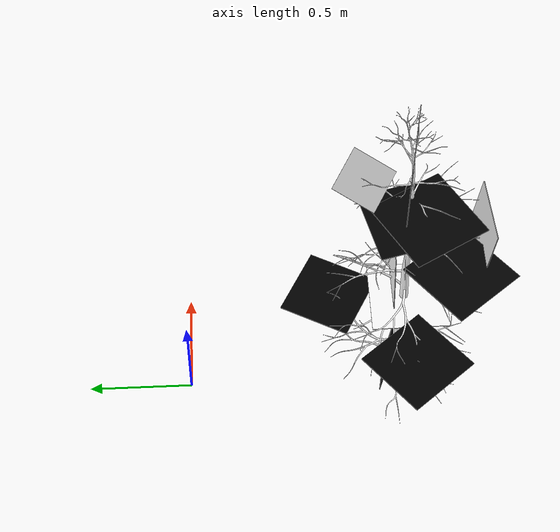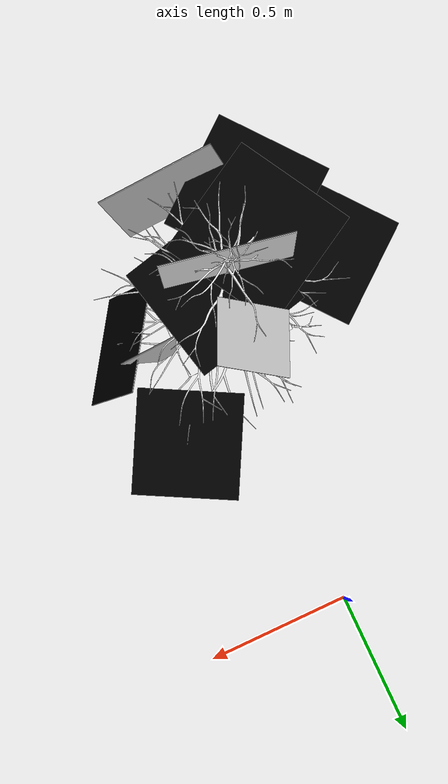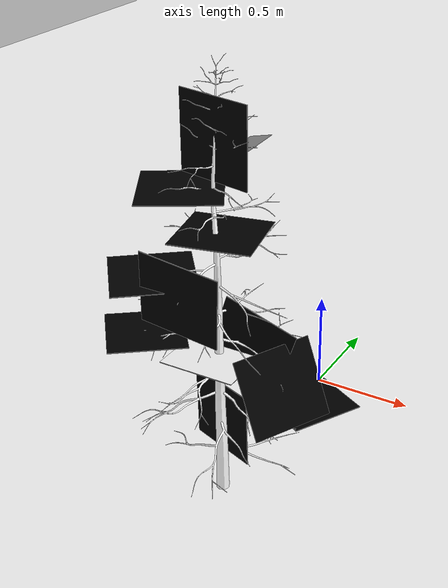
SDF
<?xml version="1.0"?>
<sdf version="1.7">
    <world name="apple_tree_3_marked">

        <plugin filename="gz-sim-physics-system" name="gz::sim::systems::Physics"/>
        <plugin filename="gz-sim-user-commands-system" name="gz::sim::systems::UserCommands"/>
        <plugin filename="gz-sim-scene-broadcaster-system" name="gz::sim::systems::SceneBroadcaster"/>
        <plugin filename="gz-sim-contact-system" name="gz::sim::systems::Contact"/>
        <plugin filename="gz-sim-sensors-system" name="gz::sim::systems::Sensors">
            <render_engine>ogre2</render_engine>
        </plugin>

        <physics type="ode">
            <max_step_size>0.01</max_step_size>
            <real_time_factor>1</real_time_factor>
            <max_contacts>10</max_contacts>
            <real_time_update_rate>1000</real_time_update_rate>
        </physics>

        <gravity>0 0 -9.8</gravity>

        <scene>
            <ambient>0.5 0.5 0.5 1</ambient>
            <background>0.3 0.7 0.9 1</background>
            <grid>false</grid>
            <sky>
                <clouds>
                    <speed>12</speed>
                </clouds>
            </sky>
            <shadows>true</shadows>
        </scene>

        <light name='sun' type='directional'>
            <pose>0 0 10 0 -0 0</pose>
            <cast_shadows>true</cast_shadows>
            <intensity>1</intensity>
            <direction>-0.5 0.1 -0.9</direction>
            <diffuse>0.8 0.8 0.8 1</diffuse>
            <specular>0.2 0.2 0.2 1</specular>
            <attenuation>
                <range>1000</range>
                <linear>0.01</linear>
                <constant>0.90000000000000002</constant>
                <quadratic>0.001</quadratic>
            </attenuation>
            <spot>
                <inner_angle>0</inner_angle>
                <outer_angle>0</outer_angle>
                <falloff>0</falloff>
            </spot>
        </light>

        <!-- Apple tree with crook canker disease -->
        <include>
            <uri>model://apple_tree_3</uri>
            <name>apple_tree_3</name>
            <pose>0 -1.0 0 0 0 1.57</pose>
        </include>

        <!-- Marker 0 (Shepherd's Crook) -->
        <include>
            <uri>model://aruco_marker_0</uri>
            <name>aruco_marker_0</name>
            <pose>-0.009654 -0.778532 1.57872 0.811871 1.06036 0.309182</pose>
        </include>

        <include>
            <uri>model://aruco_marker_1</uri>
            <name>aruco_marker_1</name>
            <pose>-0.367082 -1.02781 0.742518 -1.59411 0.01861 0.673443</pose>
        </include>

        <include>
            <uri>model://aruco_marker_2</uri>
            <name>aruco_marker_2</name>
            <pose>-0.188503 -1.19846 1.15268 -1.57155 0.000598 0.669926</pose>
        </include>

        <include>
            <uri>model://aruco_marker_3</uri>
            <name>aruco_marker_3</name>
            <pose>0.006658 -1.30637 1.1344 0.895488 -1.3595 -0.884485</pose>
        </include>

        <include>
            <uri>model://aruco_marker_4</uri>
            <name>aruco_marker_4</name>
            <pose>0.319513 -1.03267 0.667826 -1.31646 1.13327 -0.356823</pose>
        </include>

        <include>
            <uri>model://aruco_marker_5</uri>
            <name>aruco_marker_5</name>
            <pose>0.262493 -0.684981 0.378171 -1.57655 0.010701 1.07706</pose>
        </include>

        <!-- Marker 1 (Canker) -->
        <include>
            <uri>model://aruco_marker_6</uri>
            <name>aruco_marker_6</name>
            <pose>-0.017538 -0.967017 0.373719 2.78862 -1.55428 3.14159</pose>
        </include>

        <include>
            <uri>model://aruco_marker_7</uri>
            <name>aruco_marker_7</name>
            <pose>0.121309 -0.949999 0.763307 0 0.312433 0</pose>
        </include>

        <include>
            <uri>model://aruco_marker_8</uri>
            <name>aruco_marker_8</name>
            <pose>-0.004027 -1.0199 0.730032 1.5497 -0 0</pose>
        </include>

        <include>
            <uri>model://aruco_marker_9</uri>
            <name>aruco_marker_9</name>
            <pose>0.00901 -0.982064 1.28864 -1.60391 0.007637 0.226589</pose>
        </include>

        <include>
            <uri>model://aruco_marker_10</uri>
            <name>aruco_marker_10</name>
            <pose>-0.142968 -1.03624 1.47459 -1.56665 -0.002368 0.518794</pose>
        </include>

        <include>
            <uri>model://aruco_marker_11</uri>
            <name>aruco_marker_11</name>
            <pose>-0.027246 -0.97032 1.67792 -1.00306 -1.56627 0.811597</pose>
        </include>
    </world>
</sdf>

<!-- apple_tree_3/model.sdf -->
<sdf version="1.7">
    <model name="apple_tree_3">
        <static>true</static>
        <link name="ground">
        <visual name="ground">
            <geometry>
            <mesh>
                <uri>model://apple_tree_3/meshes/ground.obj</uri>
            </mesh>
            </geometry>
            <material>
            <ambient>0.600 0.600 0.600 1</ambient>
            <diffuse>1.000 1.000 1.000 1</diffuse>
            <specular>0.1 0.1 0.1 1</specular>
            <emissive>0 0 0 1</emissive>
            <pbr>
                <metal>
                <albedo_map>model://apple_tree_3/materials/dirt.jpg</albedo_map>
                <roughness>0.7</roughness>
                <metalness>0.0</metalness>
                </metal>
            </pbr>
            </material>
        </visual>
        <collision name="collision">
            <geometry>
            <mesh>
                <uri>model://apple_tree_3/meshes/ground.obj</uri>
            </mesh>
            </geometry>
            <surface>
            <contact/>
            </surface>
            <laser_retro>0.0</laser_retro>
        </collision>
        </link>
        <link name="apple_tree_3_link">

            <visual name="apple_tree_3_visual">
                <geometry>
                <mesh>
                    <uri>model://apple_tree_3/meshes/apple_tree_3.obj</uri>
                </mesh>
                </geometry>

                <material>
                    <ambient>0.6 0.6 0.6 1</ambient>
                    <diffuse>1 1 1 1</diffuse>
                    <specular>0.1 0.1 0.1 1</specular>
                    <emissive>0 0 0 1</emissive>

                    <pbr>
                        <metal>
                        <!-- Base color -->
                        <albedo_map>model://apple_tree_3/materials/tree_basecolor_baked.png</albedo_map>

                        <!-- Normal map -->
                        <normal_map>model://apple_tree_3/materials/tree_normal_baked.png</normal_map>

                        <!-- Roughness map (preferred) -->
                        <roughness_map>model://apple_tree_3/materials/tree_roughness_baked.png</roughness_map>

                        <!-- For bark -->
                        <metalness>0.0</metalness>

                        <!-- Optional: if your roughness map is missing/ignored, fallback constant -->
                        </metal>
                    </pbr>
                </material>

            </visual>

            <collision name="apple_tree_3_collision">
                <geometry>
                    <mesh>
                        <uri>model://apple_tree_3/meshes/apple_tree_3.obj</uri>
                    </mesh>
                </geometry>
                <surface>
                <contact>
                    <collide_without_contact>true</collide_without_contact>
                    <collide_bitmask>0x00</collide_bitmask>
                </contact>
                </surface>
            </collision>

        </link>
    </model>
</sdf>

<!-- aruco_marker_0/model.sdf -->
<sdf version='1.6'>
  <model name='aruco_marker_0'>
    <link name='link_0'>
      <pose frame=''>0 0 0 0 -0 0</pose>
      <inertial>
        <mass>1</mass>
        <inertia>
          <ixx>0</ixx>
          <ixy>0</ixy>
          <ixz>0</ixz>
          <iyy>0</iyy>
          <iyz>0</iyz>
          <izz>0</izz>
        </inertia>
      </inertial>
      <visual name='visual'>
        <pose frame=''>0 0 0 0 -0 0</pose>
        <geometry>
          <mesh>
            <uri>file://isr-testbed/aruco_marker_0/aruco_marker_0.dae</uri>
            <scale>0.1 0.1 0.1</scale>
          </mesh>
        </geometry>
        <material>
          <lighting>1</lighting>
          <script>
            <uri>file://media/materials/scripts/gazebo.material</uri>
            <name>Gazebo/DepthMapVS</name>
          </script>
          <ambient>0.3 0.3 0.3 1</ambient>
          <diffuse>0.7 0.7 0.7 1</diffuse>
          <specular>0.01 0.01 0.01 1</specular>
          <emissive>0 0 0 1</emissive>
        </material>
        <transparency>0</transparency>
        <cast_shadows>1</cast_shadows>
      </visual>
      <collision name='collision'>
        <laser_retro>0</laser_retro>
        <max_contacts>10</max_contacts>
        <pose frame=''>0 0 0 0 -0 0</pose>
        <geometry>
          <mesh>
            <uri>file://isr-testbed/aruco_marker_0/aruco_marker_0.dae</uri>
            <scale>0.1 0.1 0.1</scale>
          </mesh>
        </geometry>
        <surface>
          <friction>
            <ode>
              <mu>1</mu>
              <mu2>1</mu2>
              <fdir1>0 0 0</fdir1>
              <slip1>0</slip1>
              <slip2>0</slip2>
            </ode>
            <torsional>
              <coefficient>1</coefficient>
              <patch_radius>0</patch_radius>
              <surface_radius>0</surface_radius>
              <use_patch_radius>1</use_patch_radius>
              <ode>
                <slip>0</slip>
              </ode>
            </torsional>
          </friction>
          <bounce>
            <restitution_coefficient>0</restitution_coefficient>
            <threshold>1e+06</threshold>
          </bounce>
          <contact>
            <collide_without_contact>0</collide_without_contact>
            <collide_without_contact_bitmask>1</collide_without_contact_bitmask>
            <collide_bitmask>1</collide_bitmask>
            <ode>
              <soft_cfm>0</soft_cfm>
              <soft_erp>0.2</soft_erp>
              <kp>1e+13</kp>
              <kd>1</kd>
              <max_vel>0.01</max_vel>
              <min_depth>0</min_depth>
            </ode>
            <bullet>
              <split_impulse>1</split_impulse>
              <split_impulse_penetration_threshold>-0.01</split_impulse_penetration_threshold>
              <soft_cfm>0</soft_cfm>
              <soft_erp>0.2</soft_erp>
              <kp>1e+13</kp>
              <kd>1</kd>
            </bullet>
          </contact>
        </surface>
      </collision>
    </link>
    <static>1</static>
    <allow_auto_disable>1</allow_auto_disable>
  </model>
</sdf>

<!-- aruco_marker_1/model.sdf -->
<sdf version="1.9">
  <model name="aruco_marker_1">
    <static>true</static>

    <link name="link">
      <visual name="front">
        <pose>0 0 0 0 0 0</pose>
        <geometry>
          <box>
            <size>0.35 0.002 0.35</size>
          </box>
        </geometry>

        <material>
          <ambient>1 1 1 1</ambient>
          <diffuse>1 1 1 1</diffuse>
          <specular>0.1 0.1 0.1 1</specular>
          <emissive>0 0 0 1</emissive>

          <pbr>
            <metal>
              <albedo_map>
                model://aruco/aruco_marker_1/materials/textures/marker_1.png
              </albedo_map>
              <emissive_map>
                model://aruco/aruco_marker_1/materials/textures/marker_1.png
              </emissive_map>
            </metal>
          </pbr>
        </material>
      </visual>

      <visual name="back">
        <pose>0 -0.002 0 0 0 3.1416</pose>
        <geometry>
          <box>
            <size>0.35 0.002 0.35</size>
          </box>
        </geometry>
        <material>
          <ambient>0 0 0 1</ambient>
          <diffuse>0 0 0 1</diffuse>
        </material>
      </visual>

    </link>

  </model>
</sdf>

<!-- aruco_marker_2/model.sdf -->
<sdf version="1.9">
  <model name="aruco_marker_2">
    <static>true</static>

    <link name="link">
      <visual name="front">
        <pose>0 0 0 0 0 0</pose>
        <geometry>
          <box>
            <size>0.35 0.002 0.35</size>
          </box>
        </geometry>

        <material>
          <ambient>1 1 1 1</ambient>
          <diffuse>1 1 1 1</diffuse>
          <specular>0.1 0.1 0.1 1</specular>
          <emissive>0 0 0 1</emissive>

          <pbr>
            <metal>
              <albedo_map>
                model://aruco/aruco_marker_2/materials/textures/marker_2.png
              </albedo_map>
              <emissive_map>
                model://aruco/aruco_marker_2/materials/textures/marker_2.png
              </emissive_map>
            </metal>
          </pbr>
        </material>
      </visual>

      <visual name="back">
        <pose>0 -0.002 0 0 0 3.1416</pose>
        <geometry>
          <box>
            <size>0.35 0.002 0.35</size>
          </box>
        </geometry>
        <material>
          <ambient>0 0 0 1</ambient>
          <diffuse>0 0 0 1</diffuse>
        </material>
      </visual>

    </link>

  </model>
</sdf>

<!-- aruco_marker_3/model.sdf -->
<sdf version="1.9">
  <model name="aruco_marker_3">
    <static>true</static>

    <link name="link">
      <visual name="front">
        <pose>0 0 0 0 0 0</pose>
        <geometry>
          <box>
            <size>0.35 0.002 0.35</size>
          </box>
        </geometry>

        <material>
          <ambient>1 1 1 1</ambient>
          <diffuse>1 1 1 1</diffuse>
          <specular>0.1 0.1 0.1 1</specular>
          <emissive>0 0 0 1</emissive>

          <pbr>
            <metal>
              <albedo_map>
                model://aruco/aruco_marker_3/materials/textures/marker_3.png
              </albedo_map>
              <emissive_map>
                model://aruco/aruco_marker_3/materials/textures/marker_3.png
              </emissive_map>
            </metal>
          </pbr>
        </material>
      </visual>

      <visual name="back">
        <pose>0 -0.002 0 0 0 3.1416</pose>
        <geometry>
          <box>
            <size>0.35 0.002 0.35</size>
          </box>
        </geometry>
        <material>
          <ambient>0 0 0 1</ambient>
          <diffuse>0 0 0 1</diffuse>
        </material>
      </visual>

    </link>

  </model>
</sdf>

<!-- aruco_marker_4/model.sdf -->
<sdf version="1.9">
  <model name="aruco_marker_4">
    <static>true</static>

    <link name="link">
      <visual name="front">
        <pose>0 0 0 0 0 0</pose>
        <geometry>
          <box>
            <size>0.35 0.002 0.35</size>
          </box>
        </geometry>

        <material>
          <ambient>1 1 1 1</ambient>
          <diffuse>1 1 1 1</diffuse>
          <specular>0.1 0.1 0.1 1</specular>
          <emissive>0 0 0 1</emissive>

          <pbr>
            <metal>
              <albedo_map>
                model://aruco/aruco_marker_4/materials/textures/marker_4.png
              </albedo_map>
              <emissive_map>
                model://aruco/aruco_marker_4/materials/textures/marker_4.png
              </emissive_map>
            </metal>
          </pbr>
        </material>
      </visual>

      <visual name="back">
        <pose>0 -0.002 0 0 0 3.1416</pose>
        <geometry>
          <box>
            <size>0.35 0.002 0.35</size>
          </box>
        </geometry>
        <material>
          <ambient>0 0 0 1</ambient>
          <diffuse>0 0 0 1</diffuse>
        </material>
      </visual>

    </link>

  </model>
</sdf>

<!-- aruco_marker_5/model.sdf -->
<sdf version="1.9">
  <model name="aruco_marker_5">
    <static>true</static>

    <link name="link">
      <visual name="front">
        <pose>0 0 0 0 0 0</pose>
        <geometry>
          <box>
            <size>0.35 0.002 0.35</size>
          </box>
        </geometry>

        <material>
          <ambient>1 1 1 1</ambient>
          <diffuse>1 1 1 1</diffuse>
          <specular>0.1 0.1 0.1 1</specular>
          <emissive>0 0 0 1</emissive>

          <pbr>
            <metal>
              <albedo_map>
                model://aruco/aruco_marker_5/materials/textures/marker_5.png
              </albedo_map>
              <emissive_map>
                model://aruco/aruco_marker_5/materials/textures/marker_5.png
              </emissive_map>
            </metal>
          </pbr>
        </material>
      </visual>

      <visual name="back">
        <pose>0 -0.002 0 0 0 3.1416</pose>
        <geometry>
          <box>
            <size>0.35 0.002 0.35</size>
          </box>
        </geometry>
        <material>
          <ambient>0 0 0 1</ambient>
          <diffuse>0 0 0 1</diffuse>
        </material>
      </visual>

    </link>

  </model>
</sdf>

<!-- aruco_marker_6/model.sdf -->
<sdf version="1.9">
  <model name="aruco_marker_6">
    <static>true</static>

    <link name="link">
      <visual name="front">
        <pose>0 0 0 0 0 0</pose>
        <geometry>
          <box>
            <size>0.35 0.002 0.35</size>
          </box>
        </geometry>

        <material>
          <ambient>1 1 1 1</ambient>
          <diffuse>1 1 1 1</diffuse>
          <specular>0.1 0.1 0.1 1</specular>
          <emissive>0 0 0 1</emissive>

          <pbr>
            <metal>
              <albedo_map>
                model://aruco/aruco_marker_6/materials/textures/marker_6.png
              </albedo_map>
              <emissive_map>
                model://aruco/aruco_marker_6/materials/textures/marker_6.png
              </emissive_map>
            </metal>
          </pbr>
        </material>
      </visual>

      <visual name="back">
        <pose>0 -0.002 0 0 0 3.1416</pose>
        <geometry>
          <box>
            <size>0.35 0.002 0.35</size>
          </box>
        </geometry>
        <material>
          <ambient>0 0 0 1</ambient>
          <diffuse>0 0 0 1</diffuse>
        </material>
      </visual>

    </link>

  </model>
</sdf>

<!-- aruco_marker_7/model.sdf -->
<sdf version="1.9">
  <model name="aruco_marker_7">
    <static>true</static>

    <link name="link">
      <visual name="front">
        <pose>0 0 0 0 0 0</pose>
        <geometry>
          <box>
            <size>0.35 0.002 0.35</size>
          </box>
        </geometry>

        <material>
          <ambient>1 1 1 1</ambient>
          <diffuse>1 1 1 1</diffuse>
          <specular>0.1 0.1 0.1 1</specular>
          <emissive>0 0 0 1</emissive>

          <pbr>
            <metal>
              <albedo_map>
                model://aruco/aruco_marker_7/materials/textures/marker_7.png
              </albedo_map>
              <emissive_map>
                model://aruco/aruco_marker_7/materials/textures/marker_7.png
              </emissive_map>
            </metal>
          </pbr>
        </material>
      </visual>

      <visual name="back">
        <pose>0 -0.002 0 0 0 3.1416</pose>
        <geometry>
          <box>
            <size>0.35 0.002 0.35</size>
          </box>
        </geometry>
        <material>
          <ambient>0 0 0 1</ambient>
          <diffuse>0 0 0 1</diffuse>
        </material>
      </visual>

    </link>

  </model>
</sdf>

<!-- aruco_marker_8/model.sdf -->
<sdf version="1.9">
  <model name="aruco_marker_8">
    <static>true</static>

    <link name="link">
      <visual name="front">
        <pose>0 0 0 0 0 0</pose>
        <geometry>
          <box>
            <size>0.35 0.002 0.35</size>
          </box>
        </geometry>

        <material>
          <ambient>1 1 1 1</ambient>
          <diffuse>1 1 1 1</diffuse>
          <specular>0.1 0.1 0.1 1</specular>
          <emissive>0 0 0 1</emissive>

          <pbr>
            <metal>
              <albedo_map>
                model://aruco/aruco_marker_8/materials/textures/marker_8.png
              </albedo_map>
              <emissive_map>
                model://aruco/aruco_marker_8/materials/textures/marker_8.png
              </emissive_map>
            </metal>
          </pbr>
        </material>
      </visual>

      <visual name="back">
        <pose>0 -0.002 0 0 0 3.1416</pose>
        <geometry>
          <box>
            <size>0.35 0.002 0.35</size>
          </box>
        </geometry>
        <material>
          <ambient>0 0 0 1</ambient>
          <diffuse>0 0 0 1</diffuse>
        </material>
      </visual>

    </link>

  </model>
</sdf>

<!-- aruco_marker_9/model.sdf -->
<sdf version="1.9">
  <model name="aruco_marker_9">
    <static>true</static>

    <link name="link">
      <visual name="front">
        <pose>0 0 0 0 0 0</pose>
        <geometry>
          <box>
            <size>0.35 0.002 0.35</size>
          </box>
        </geometry>

        <material>
          <ambient>1 1 1 1</ambient>
          <diffuse>1 1 1 1</diffuse>
          <specular>0.1 0.1 0.1 1</specular>
          <emissive>0 0 0 1</emissive>

          <pbr>
            <metal>
              <albedo_map>
                model://aruco/aruco_marker_9/materials/textures/marker_9.png
              </albedo_map>
              <emissive_map>
                model://aruco/aruco_marker_9/materials/textures/marker_9.png
              </emissive_map>
            </metal>
          </pbr>
        </material>
      </visual>

      <visual name="back">
        <pose>0 -0.002 0 0 0 3.1416</pose>
        <geometry>
          <box>
            <size>0.35 0.002 0.35</size>
          </box>
        </geometry>
        <material>
          <ambient>0 0 0 1</ambient>
          <diffuse>0 0 0 1</diffuse>
        </material>
      </visual>

    </link>

  </model>
</sdf>

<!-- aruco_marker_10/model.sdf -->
<sdf version="1.9">
  <model name="aruco_marker_10">
    <static>true</static>

    <link name="link">
      <visual name="front">
        <pose>0 0 0 0 0 0</pose>
        <geometry>
          <box>
            <size>0.35 0.002 0.35</size>
          </box>
        </geometry>

        <material>
          <ambient>1 1 1 1</ambient>
          <diffuse>1 1 1 1</diffuse>
          <specular>0.1 0.1 0.1 1</specular>
          <emissive>0 0 0 1</emissive>

          <pbr>
            <metal>
              <albedo_map>
                model://aruco/aruco_marker_10/materials/textures/marker_10.png
              </albedo_map>
              <emissive_map>
                model://aruco/aruco_marker_10/materials/textures/marker_10.png
              </emissive_map>
            </metal>
          </pbr>
        </material>
      </visual>

      <visual name="back">
        <pose>0 -0.002 0 0 0 3.1416</pose>
        <geometry>
          <box>
            <size>0.35 0.002 0.35</size>
          </box>
        </geometry>
        <material>
          <ambient>0 0 0 1</ambient>
          <diffuse>0 0 0 1</diffuse>
        </material>
      </visual>

    </link>

  </model>
</sdf>

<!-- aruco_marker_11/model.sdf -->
<sdf version="1.9">
  <model name="aruco_marker_11">
    <static>true</static>

    <link name="link">
      <visual name="front">
        <pose>0 0 0 0 0 0</pose>
        <geometry>
          <box>
            <size>0.35 0.002 0.35</size>
          </box>
        </geometry>

        <material>
          <ambient>1 1 1 1</ambient>
          <diffuse>1 1 1 1</diffuse>
          <specular>0.1 0.1 0.1 1</specular>
          <emissive>0 0 0 1</emissive>

          <pbr>
            <metal>
              <albedo_map>
                model://aruco/aruco_marker_11/materials/textures/marker_11.png
              </albedo_map>
              <emissive_map>
                model://aruco/aruco_marker_11/materials/textures/marker_11.png
              </emissive_map>
            </metal>
          </pbr>
        </material>
      </visual>

      <visual name="back">
        <pose>0 -0.002 0 0 0 3.1416</pose>
        <geometry>
          <box>
            <size>0.35 0.002 0.35</size>
          </box>
        </geometry>
        <material>
          <ambient>0 0 0 1</ambient>
          <diffuse>0 0 0 1</diffuse>
        </material>
      </visual>

    </link>

  </model>
</sdf>
